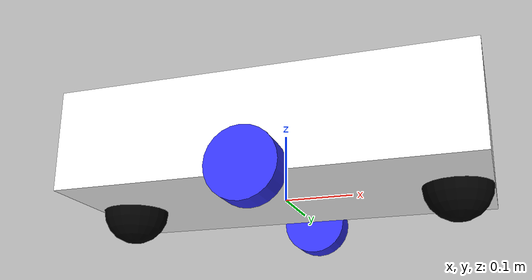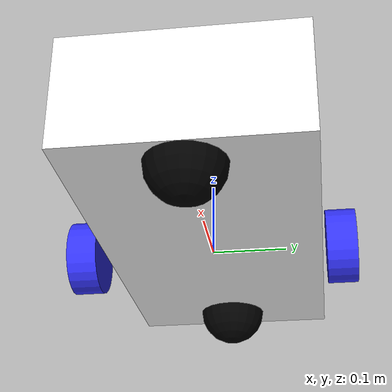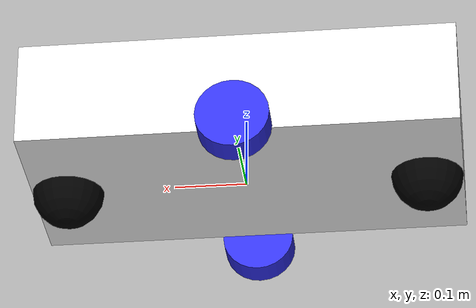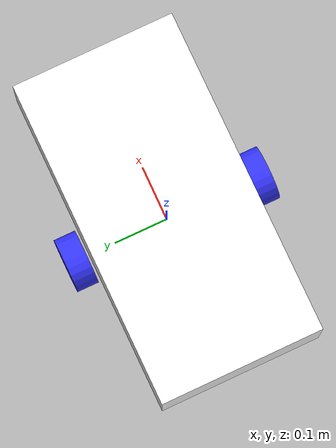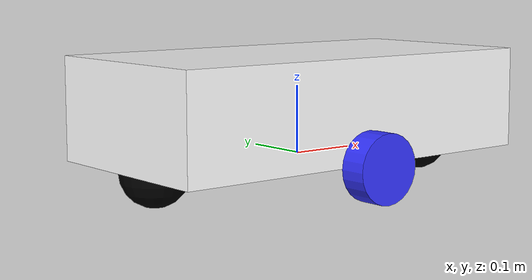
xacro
<?xml version="1.0"?>
<robot xmlns:xacro="http://www.ros.org/wiki/xacro" >

    <xacro:include filename="inertial_macros.xacro"/>

    <material name="white">
        <color rgba="1 1 1 1" />
    </material>

    <material name="orange">
        <color rgba="1 0.3 0.1 1"/>
    </material>

    <material name="blue">
        <color rgba="0.2 0.2 1 1"/>
    </material>

    <material name="black">
        <color rgba="0 0 0 1"/>
    </material>

    <!-- BASE LINK -->

    <link name="base_link">

    </link>

    <!-- CHASSIS LINK -->

    <joint name="chassis_joint" type="fixed">
        <parent link="base_link"/>
        <child link="chassis"/>
        <origin xyz="-0.3 0 0"/>
    </joint>

    <link name="chassis">
        <visual>
            <origin xyz="0.3 0 0.075"/>
            <geometry>
                <box size="0.6 0.3 0.15"/>
            </geometry>
            <material name="white"/>
        </visual>
        <collision>
            <origin xyz="0.3 0 0.075"/>
            <geometry>
                <box size="0.6 0.3 0.15"/>
            </geometry>
        </collision>
        <xacro:inertial_box mass="5.5" x="0.6" y="0.3" z="0.15">
            <origin xyz="0.3 0 0.075" rpy="0 0 0"/>
        </xacro:inertial_box>
    </link>

    <gazebo reference="chassis">
        <material>Gazebo/White</material>
    </gazebo>
    <gazebo reference="left_wheel">
        <material>Gazebo/Red</material>
    </gazebo>
    <gazebo reference="right_wheel">
        <material>Gazebo/Red</material>
    </gazebo>

    <gazebo reference="caster_wheel">
        <material>Gazebo/Black</material>
        <mu1 value="1"/>
        <mu2 value="1"/>
    </gazebo>
    <!-- LEFT WHEEL LINK -->

    <joint name="left_wheel_joint" type="continuous">
        <parent link="base_link"/>
        <child link="left_wheel"/>
        <origin xyz="0 0.175 0" rpy="-${pi/2} 0 0" />
        <axis xyz="0 0 1"/>
    </joint>

    <link name="left_wheel">
        <visual>
            <geometry>
                <cylinder radius="0.05" length="0.04"/>
            </geometry>
            <material name="blue"/>
        </visual>
        <collision>
            <geometry>
                <cylinder radius="0.05" length="0.04"/>
            </geometry>
        </collision>
        <xacro:inertial_cylinder mass="0.1" length="0.04" radius="0.05">
            <origin xyz="0 0 0" rpy="0 0 0"/>
        </xacro:inertial_cylinder>
    </link>

    <!-- RIGHT WHEEL LINK -->

    <joint name="right_wheel_joint" type="continuous">
        <parent link="base_link"/>
        <child link="right_wheel"/>
        <origin xyz="0 -0.175 0" rpy="${pi/2} 0 0" />
        <axis xyz="0 0 -1"/>
    </joint>

    <link name="right_wheel">
        <visual>
            <geometry>
                <cylinder radius="0.05" length="0.04"/>
            </geometry>
            <material name="blue"/>
        </visual>
        <collision>
            <geometry>
                <cylinder radius="0.05" length="0.04"/>
            </geometry>
        </collision>
        <xacro:inertial_cylinder mass="0.1" length="0.04" radius="0.05">
            <origin xyz="0 0 0" rpy="0 0 0"/>
        </xacro:inertial_cylinder>
    </link>

    <!-- CASTER WHEEL LINK -->

    <joint name="caster_wheel_f_joint" type="continuous">
        <parent link="base_link"/>
        <child link="caster_wheel_f"/>
        <origin xyz="0.25 0 0.00001"/>
    </joint>

    <link name="caster_wheel_f">
        <surface>
            <contact>
                <ode>
                    <kp>10</kp> <!-- Stiffness (Spring Constant) -->
                    <kd>1</kd>     <!-- Damping -->
                </ode>
            </contact>
        </surface>

        <visual>
            <geometry>
                <sphere radius="0.05"/>
            </geometry>
            <material name="black"/>
        </visual>
        <collision>
            <geometry>
                <sphere radius="0.05"/>
            </geometry>
        </collision>
        <xacro:inertial_sphere mass="0.001" radius="0.05">
            <origin xyz="0 0 0" rpy="0 0 0"/>
        </xacro:inertial_sphere>
    </link>

    <joint name="caster_wheel_r_joint" type="continuous">
        <parent link="base_link"/>
        <child link="caster_wheel_r"/>
        <origin xyz="-0.25 0 0.00001"/>
    </joint>

    <link name="caster_wheel_r">
        <surface>
            <contact>
                <ode>
                    <kp>10</kp> <!-- Stiffness (Spring Constant) -->
                    <kd>1</kd>     <!-- Damping -->
                </ode>
            </contact>
        </surface>
        <visual>
            <geometry>
                <sphere radius="0.05"/>
            </geometry>
            <material name="black"/>
        </visual>
        <collision>
            <geometry>
                <sphere radius="0.05"/>
            </geometry>
        </collision>
        <xacro:inertial_sphere mass="0.001" radius="0.05">
            <origin xyz="0 0 0" rpy="0 0 0"/>
        </xacro:inertial_sphere>
    </link>

</robot>

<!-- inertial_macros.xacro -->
<robot xmlns:xacro="http://www.ros.org/wiki/xacro" >

    <!-- Specify some standard inertial calculations https://en.wikipedia.org/wiki/List_of_moments_of_inertia -->
    <!-- These make use of xacro's mathematical functionality -->

    <xacro:macro name="inertial_sphere" params="mass radius *origin">
        <inertial>
            <xacro:insert_block name="origin"/>
            <mass value="${mass}" />
            <inertia ixx="${(2/5) * mass * (radius*radius)}" ixy="0.0" ixz="0.0"
                    iyy="${(2/5) * mass * (radius*radius)}" iyz="0.0"
                    izz="${(2/5) * mass * (radius*radius)}" />
        </inertial>
    </xacro:macro>

    <xacro:macro name="inertial_box" params="mass x y z *origin">
        <inertial>
            <xacro:insert_block name="origin"/>
            <mass value="${mass}" />
            <inertia ixx="${(1/12) * mass * (y*y+z*z)}" ixy="0.0" ixz="0.0"
                    iyy="${(1/12) * mass * (x*x+z*z)}" iyz="0.0"
                    izz="${(1/12) * mass * (x*x+y*y)}" />
        </inertial>
    </xacro:macro>

    <xacro:macro name="inertial_cylinder" params="mass length radius *origin">
        <inertial>
            <xacro:insert_block name="origin"/>
            <mass value="${mass}" />
            <inertia ixx="${(1/12) * mass * (3*radius*radius + length*length)}" ixy="0.0" ixz="0.0"
                    iyy="${(1/12) * mass * (3*radius*radius + length*length)}" iyz="0.0"
                    izz="${(1/2) * mass * (radius*radius)}" />
        </inertial>
    </xacro:macro>

</robot>
